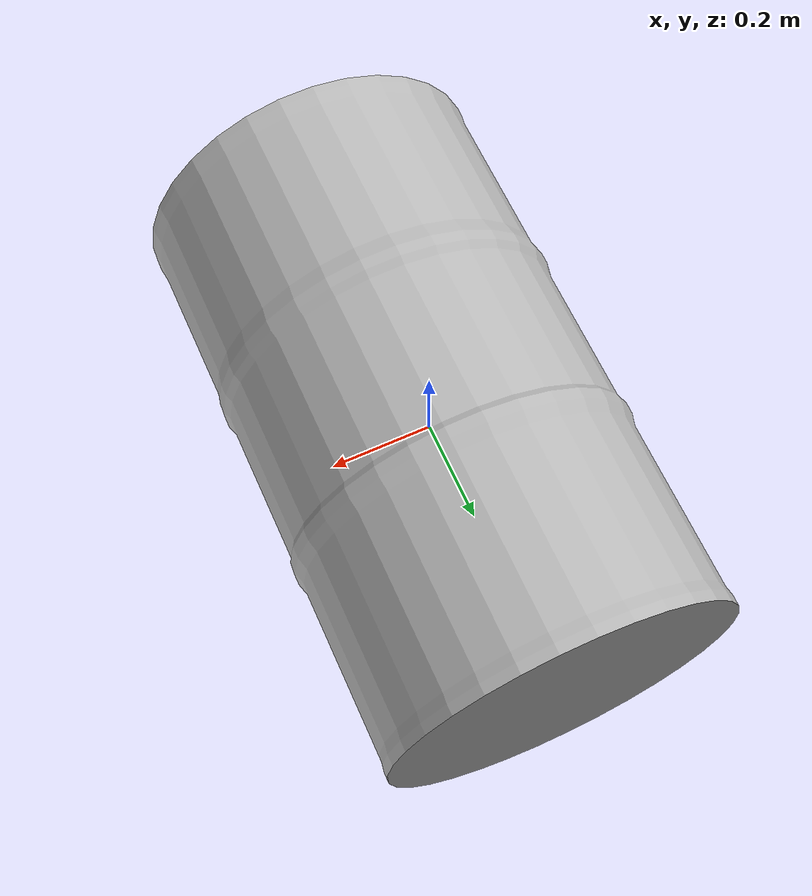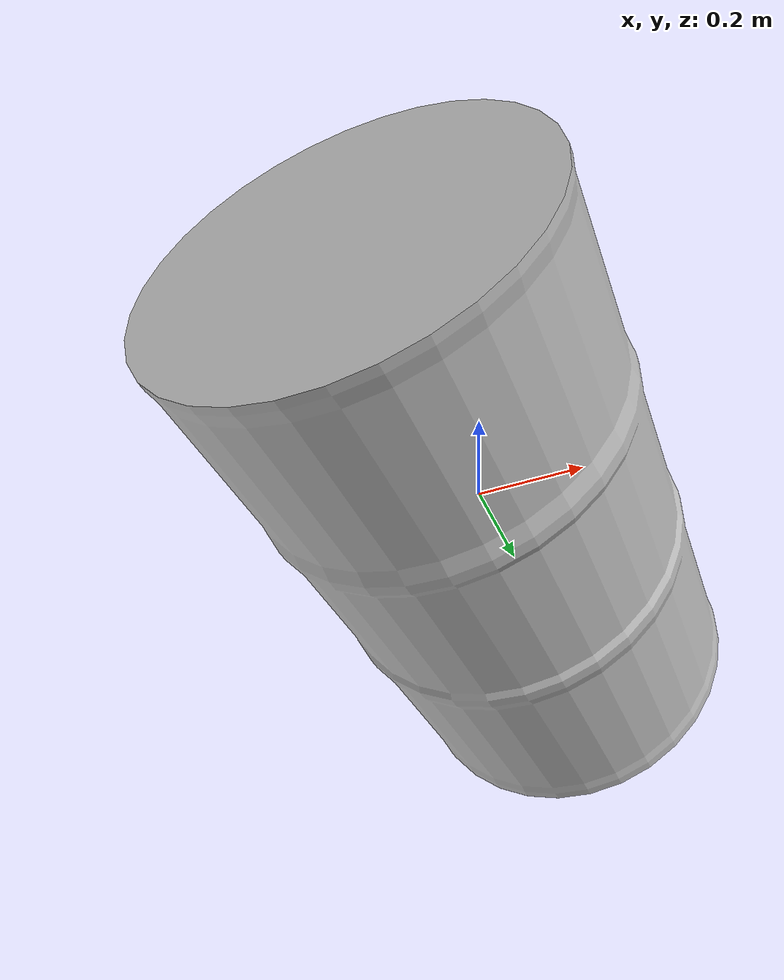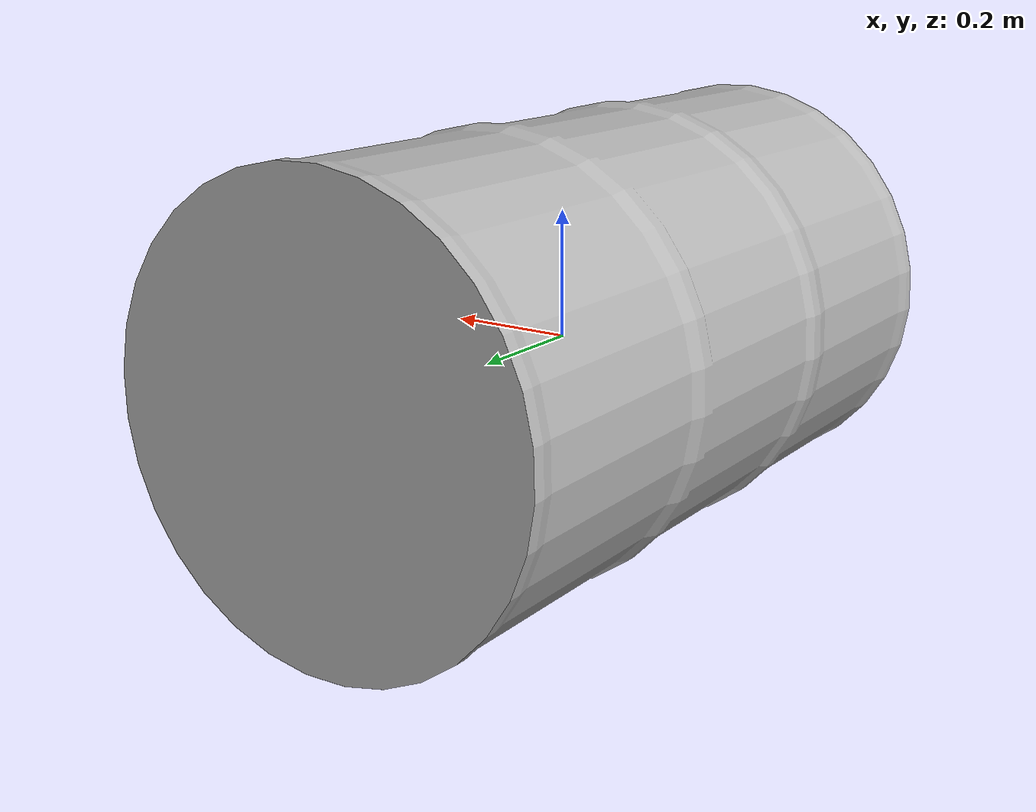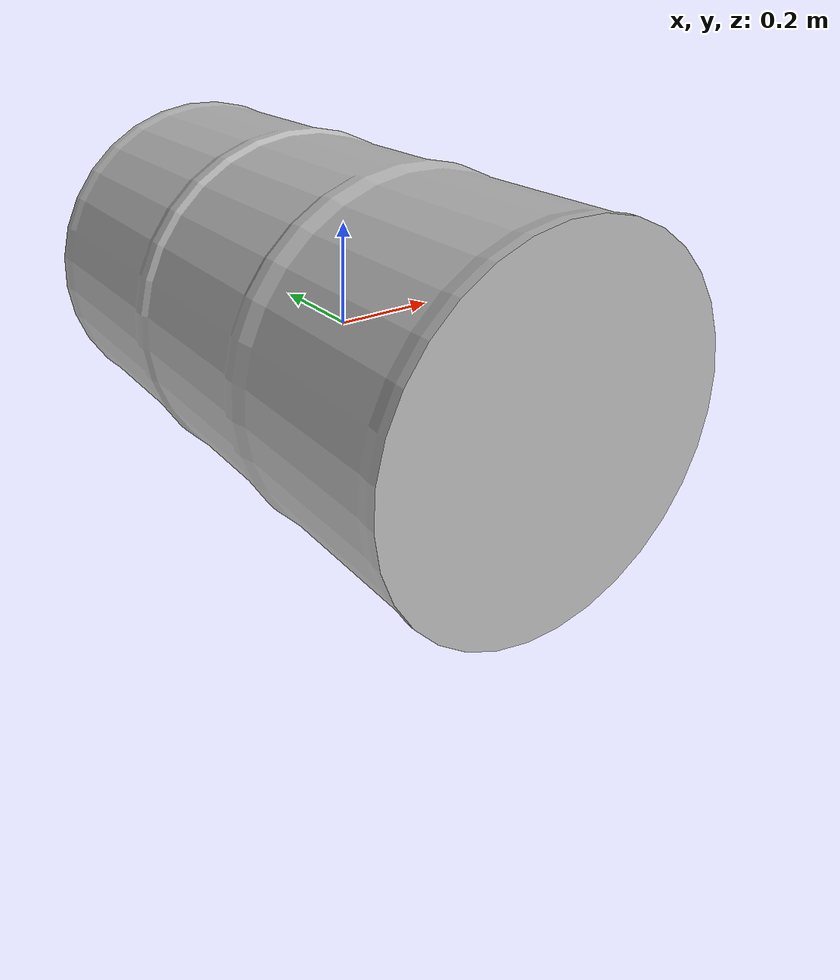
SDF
<?xml version="1.0" ?>
<sdf version="1.5">
<model name="oil_drum">
  <plugin name='SetPosePlugin' filename='libSetPosePlugin.so'/>
  <plugin name='GetPosePlugin' filename='libGetPosePlugin.so'/>
  <static>false</static>
  <link name="oil_drum_link">

  <inertial>
    <inertia>
      <ixx>1</ixx>
      <ixy>0</ixy>
      <ixz>0</ixz>
      <iyy>1</iyy>
      <iyz>0</iyz>
      <izz>1</izz>
    </inertia>
    <mass>5</mass>
  </inertial>

  <visual name="oil_drum">
    <pose>0 0 0 0 0 0</pose>
    <geometry>
      <mesh><uri>model://oil_drum/meshes/oil_drum.obj</uri><scale>1 1 1</scale></mesh>
    </geometry>
  </visual>

  <collision name="oil_drum">
    <pose>0 0 0 0 0 0</pose>
    <geometry>
      <mesh><uri>model://oil_drum/meshes/oil_drum.obj</uri><scale>1 1 1</scale></mesh>
    </geometry>
  </collision>

  </link>
</model>
</sdf>
